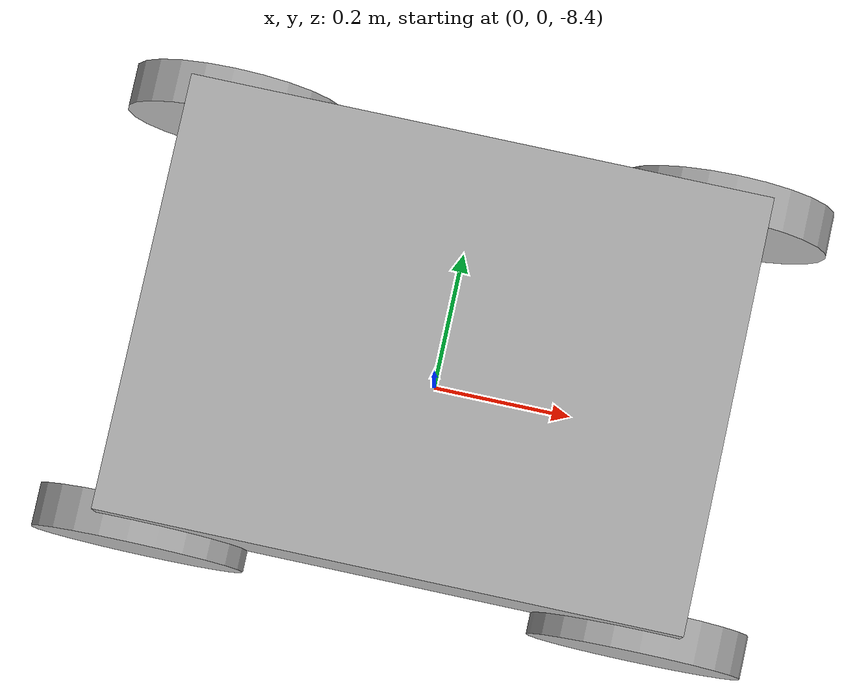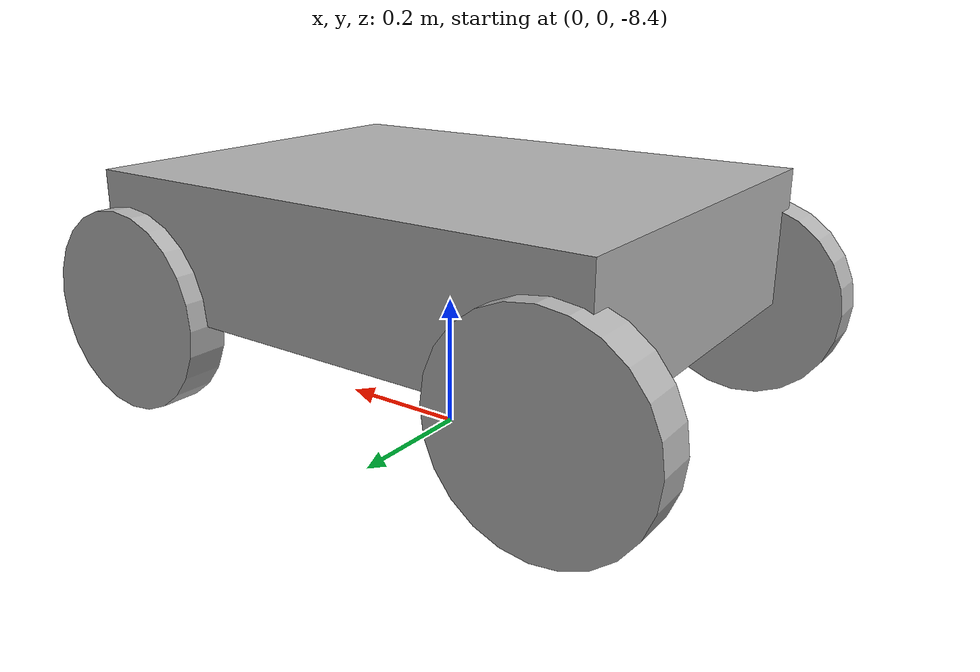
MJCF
<mujoco model="robot_with_programmatic_floor"><compiler angle="degree" autolimits="true" />

  <option timestep="0.01" gravity="0 0 -9.0" solver="Newton" iterations="50" /><size njmax="1000" nconmax="500" /><default>
    <geom rgba="0.7 0.7 0.7 1" friction="1.2 0.01 0.002" condim="4" />
  </default>

  <asset><texture name="tex_grid" type="2d" builtin="checker" rgb1="0.7 0.8 1.0" rgb2="0.75 0.85 1.0" width="100" height="100" mark="edge" markrgb="1 1 1" /><texture name="tex_wheel_radius" type="2d" builtin="checker" rgb1="0.8 0.2 0.2" rgb2="0.1 0.1 0.1" width="32" height="32" mark="random" markrgb="0.8 0.8 0.2" /><material name="mat_floor_normal" rgba="0.7 0.8 1.0 0.8" texture="tex_grid" shininess="0.1" specular="0.3" texrepeat="50 50" /><material name="mat_floor_ice" rgba="0.6 0.7 1.0 0.7" texture="tex_grid" shininess="0.8" specular="0.9" texrepeat="50 50" /><material name="mat_floor_sand" rgba="0.9 0.8 0.6 0.8" texture="tex_grid" shininess="0.1" specular="0.1" texrepeat="50 50" /><material name="mat_chassis_beige" rgba="0.96 0.87 0.70 1" shininess="0.3" specular="0.5" /><material name="mat_wheel_black" rgba="0.1 0.1 0.1 1" texture="tex_wheel_radius" shininess="0.6" specular="0.3" /><material name="mat_chassis" rgba="0.3 0.3 0.35 1" />
    <material name="mat_wheel" rgba="0.1 0.1 0.1 1" />
    <material name="mat_floor" rgba="0.85 0.85 0.85 1" />
  </asset><worldbody><geom name="dynamic_floor" type="plane" size="100 100 0.1" pos="0 0 -0.1" material="mat_floor_normal" friction="1.0 0.005 0.0001" /><body name="robot" pos="0 0 -8.1">

      <joint name="root" type="free" damping="0.1" />

      <geom name="chassis" type="box" size="0.40 0.30 0.10" material="mat_chassis_beige" mass="15" />

      <body name="wheel_fl" pos=" 0.35  0.30 -0.10">
        <joint name="hinge_fl" type="hinge" axis="0 1 0" damping="0.2" limited="false" />
        <geom name="geom_fl" type="cylinder" size="0.15 0.03" euler="90 0 0" material="mat_wheel_black" mass="1.0" />
      </body>

      <body name="wheel_fr" pos=" 0.35 -0.30 -0.10">
        <joint name="hinge_fr" type="hinge" axis="0 1 0" damping="0.2" limited="false" />
        <geom name="geom_fr" type="cylinder" size="0.15 0.03" euler="90 0 0" material="mat_wheel_black" mass="1.0" />
      </body>

      <body name="wheel_rl" pos="-0.35  0.30 -0.10">
        <joint name="hinge_rl" type="hinge" axis="0 1 0" damping="0.2" limited="false" />
        <geom name="geom_rl" type="cylinder" size="0.15 0.03" euler="90 0 0" material="mat_wheel_black" mass="1.0" />
      </body>

      <body name="wheel_rr" pos="-0.35 -0.30 -0.10">
        <joint name="hinge_rr" type="hinge" axis="0 1 0" damping="0.2" limited="false" />
        <geom name="geom_rr" type="cylinder" size="0.15 0.03" euler="90 0 0" material="mat_wheel_black" mass="1.0" />
      </body>
    </body>
  </worldbody><actuator>

    <velocity name="motor_fl" joint="hinge_fl" kv="2" ctrllimited="true" ctrlrange="-10 10" />
    <velocity name="motor_fr" joint="hinge_fr" kv="2" ctrllimited="true" ctrlrange="-10 10" />
    <velocity name="motor_rl" joint="hinge_rl" kv="2" ctrllimited="true" ctrlrange="-10 10" />
    <velocity name="motor_rr" joint="hinge_rr" kv="2" ctrllimited="true" ctrlrange="-10 10" />
  </actuator>
</mujoco>
